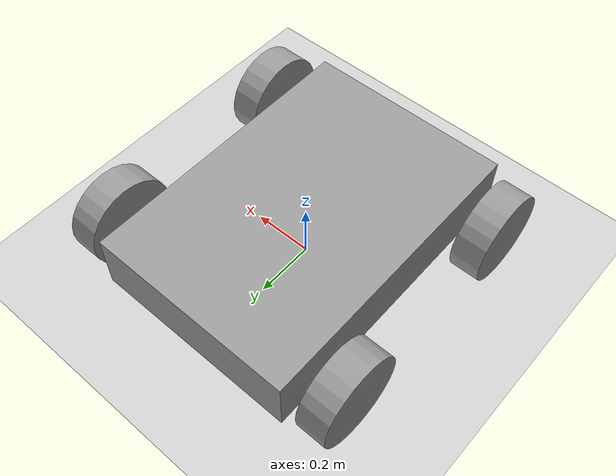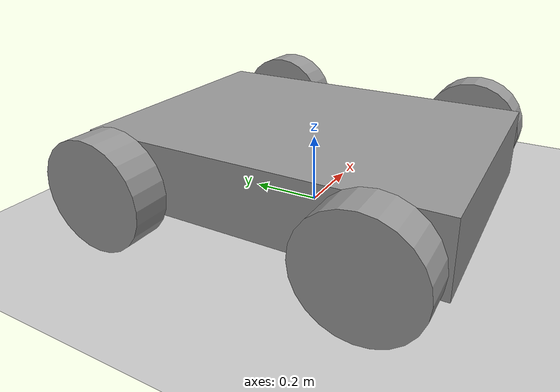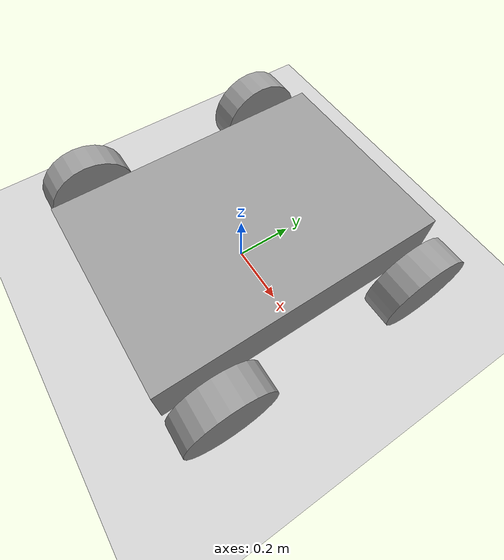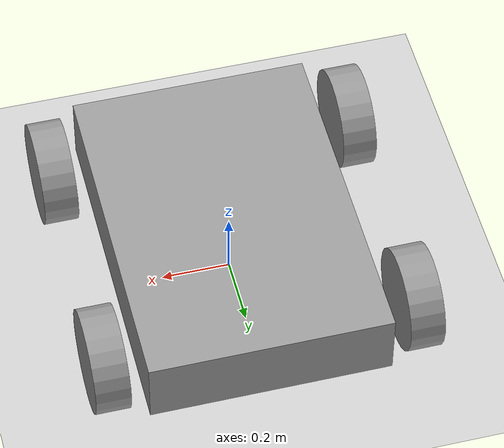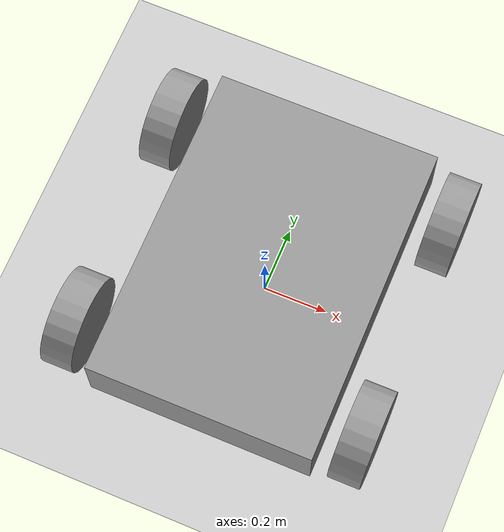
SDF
<sdf version='1.6'>
  <world name='default'>
    <physics type="ode">
      <ode>
        <solver>
          <type>quick</type>
          <iters>50</iters>
          <sor>1.0</sor>
        </solver>
      </ode>
    </physics>
    <light name='sun' type='directional'>
      <cast_shadows>1</cast_shadows>
      <pose frame=''>0 0 10 0 -0 0</pose>
      <diffuse>0.8 0.8 0.8 1</diffuse>
      <specular>0.1 0.1 0.1 1</specular>
      <attenuation>
        <range>1000</range>
        <constant>0.9</constant>
        <linear>0.01</linear>
        <quadratic>0.001</quadratic>
      </attenuation>
      <direction>-0.5 0.5 -1</direction>
    </light>
    <model name='ground_plane'>
      <static>1</static>
      <link name='link'>
        <collision name='collision'>
          <geometry>
            <plane>
              <normal>0 0 1</normal>
              <size>100 100</size>
            </plane>
          </geometry>
          <surface>
            <friction>
              <ode>
                <mu>inf</mu>
                <mu2>inf</mu2>
              </ode>
              <torsional>
                <ode/>
              </torsional>
            </friction>
            <contact>
              <ode/>
            </contact>
            <bounce/>
          </surface>
          <max_contacts>10</max_contacts>
        </collision>
        <visual name='visual'>
          <cast_shadows>0</cast_shadows>
          <geometry>
            <plane>
              <normal>0 0 1</normal>
              <size>100 100</size>
            </plane>
          </geometry>
          <material>
            <script>
              <uri>file://media/materials/scripts/gazebo.material</uri>
              <name>Gazebo/Grey</name>
            </script>
          </material>
        </visual>
        <self_collide>0</self_collide>
        <kinematic>0</kinematic>
        <gravity>1</gravity>
      </link>
    </model>
    <gravity>0 0 -9.8</gravity>
    <magnetic_field>6e-06 2.3e-05 -4.2e-05</magnetic_field>
    <atmosphere type='adiabatic'/>
    <physics name='default_physics' default='0' type='ode'>
      <max_step_size>0.001</max_step_size>
      <real_time_factor>1</real_time_factor>
      <real_time_update_rate>1000</real_time_update_rate>
    </physics>
    <scene>
      <ambient>0.4 0.4 0.4 1</ambient>
      <background>0.7 0.7 0.7 1</background>
      <shadows>1</shadows>
    </scene>
    <spherical_coordinates>
      <surface_model>EARTH_WGS84</surface_model>
      <latitude_deg>0</latitude_deg>
      <longitude_deg>0</longitude_deg>
      <elevation>0</elevation>
      <heading_deg>0</heading_deg>
    </spherical_coordinates>
    <model name='car3'>
      <link name='link_0'>
        <pose frame=''>0 0 0 0 -0 0</pose>
        <inertial>
          <mass>0.143038</mass>
          <inertia>
            <ixx>0.0124219</ixx>
            <ixy>0</ixy>
            <ixz>0</ixz>
            <iyy>0.00629195</iyy>
            <iyz>0</iyz>
            <izz>0.0177097</izz>
          </inertia>
          <pose frame=''>0 0 0 0 -0 0</pose>
        </inertial>
        <gravity>1</gravity>
        <self_collide>0</self_collide>
        <kinematic>0</kinematic>
        <visual name='visual'>
          <pose frame=''>0 0 0 0 -0 0</pose>
          <geometry>
            <box>
              <size>0.7 1 0.2</size>
            </box>
          </geometry>
          <material>
            <lighting>1</lighting>
            <script>
              <uri>file://media/materials/scripts/gazebo.material</uri>
              <name>Gazebo/Grey</name>
            </script>
            <ambient>0.3 0.3 0.3 1</ambient>
            <diffuse>0.7 0.7 0.7 1</diffuse>
            <specular>0.01 0.01 0.01 1</specular>
            <emissive>0 0 0 1</emissive>
            <shader type='vertex'>
              <normal_map>__default__</normal_map>
            </shader>
          </material>
          <cast_shadows>1</cast_shadows>
          <transparency>0</transparency>
        </visual>
        <collision name='collision'>
          <laser_retro>0</laser_retro>
          <max_contacts>10</max_contacts>
          <pose frame=''>0 0 0 0 -0 0</pose>
          <geometry>
            <box>
              <size>0.7 1 0.2</size>
            </box>
          </geometry>
          <surface>
            <friction>
              <ode>
                <mu>inf</mu>
                <mu2>inf</mu2>
                <fdir1>0 0 0</fdir1>
                <slip1>0</slip1>
                <slip2>0</slip2>
              </ode>
              <torsional>
                <coefficient>1</coefficient>
                <patch_radius>0</patch_radius>
                <surface_radius>0</surface_radius>
                <use_patch_radius>1</use_patch_radius>
                <ode>
                  <slip>0</slip>
                </ode>
              </torsional>
            </friction>
            <bounce>
              <restitution_coefficient>0</restitution_coefficient>
              <threshold>1e+06</threshold>
            </bounce>
            <contact>
              <collide_without_contact>0</collide_without_contact>
              <collide_without_contact_bitmask>1</collide_without_contact_bitmask>
              <collide_bitmask>1</collide_bitmask>
              <ode>
                <soft_cfm>0</soft_cfm>
                <soft_erp>0.2</soft_erp>
                <kp>1e+13</kp>
                <kd>1</kd>
                <max_vel>0.01</max_vel>
                <min_depth>0</min_depth>
              </ode>
              <bullet>
                <split_impulse>1</split_impulse>
                <split_impulse_penetration_threshold>-0.01</split_impulse_penetration_threshold>
                <soft_cfm>0</soft_cfm>
                <soft_erp>0.2</soft_erp>
                <kp>1e+13</kp>
                <kd>1</kd>
              </bullet>
            </contact>
          </surface>
        </collision>
      </link>
      <link name='link_1'>
        <pose frame=''>0.45 0.35 0 3.14159 1.57079 3.14159</pose>
        <inertial>
          <mass>1</mass>
          <inertia>
            <ixx>0.145833</ixx>
            <ixy>0</ixy>
            <ixz>0</ixz>
            <iyy>0.145833</iyy>
            <iyz>0</iyz>
            <izz>0.125</izz>
          </inertia>
          <pose frame=''>0 0 0 0 -0 0</pose>
        </inertial>
        <gravity>1</gravity>
        <self_collide>0</self_collide>
        <kinematic>0</kinematic>
        <visual name='visual'>
          <pose frame=''>0 0 0 0 -0 0</pose>
          <geometry>
            <cylinder>
              <radius>0.15</radius>
              <length>0.1</length>
            </cylinder>
          </geometry>
          <material>
            <lighting>1</lighting>
            <script>
              <uri>file://media/materials/scripts/gazebo.material</uri>
              <name>Gazebo/Grey</name>
            </script>
            <ambient>0.3 0.3 0.3 1</ambient>
            <diffuse>0.7 0.7 0.7 1</diffuse>
            <specular>0.01 0.01 0.01 1</specular>
            <emissive>0 0 0 1</emissive>
            <shader type='vertex'>
              <normal_map>__default__</normal_map>
            </shader>
          </material>
          <cast_shadows>1</cast_shadows>
          <transparency>0</transparency>
        </visual>
        <collision name='collision'>
          <laser_retro>0</laser_retro>
          <max_contacts>10</max_contacts>
          <pose frame=''>0 0 0 0 -0 0</pose>
          <geometry>
            <cylinder>
              <radius>0.15</radius>
              <length>0.1</length>
            </cylinder>
          </geometry>
          <surface>
            <friction>
              <ode>
                <mu>inf</mu>
                <mu2>inf</mu2>
                <fdir1>0 0 0</fdir1>
                <slip1>0</slip1>
                <slip2>0</slip2>
              </ode>
              <torsional>
                <coefficient>1</coefficient>
                <patch_radius>0</patch_radius>
                <surface_radius>0</surface_radius>
                <use_patch_radius>1</use_patch_radius>
                <ode>
                  <slip>0</slip>
                </ode>
              </torsional>
            </friction>
            <bounce>
              <restitution_coefficient>0</restitution_coefficient>
              <threshold>1e+06</threshold>
            </bounce>
            <contact>
              <collide_without_contact>0</collide_without_contact>
              <collide_without_contact_bitmask>1</collide_without_contact_bitmask>
              <collide_bitmask>1</collide_bitmask>
              <ode>
                <soft_cfm>0</soft_cfm>
                <soft_erp>0.2</soft_erp>
                <kp>1e+13</kp>
                <kd>1</kd>
                <max_vel>0.01</max_vel>
                <min_depth>0</min_depth>
              </ode>
              <bullet>
                <split_impulse>1</split_impulse>
                <split_impulse_penetration_threshold>-0.01</split_impulse_penetration_threshold>
                <soft_cfm>0</soft_cfm>
                <soft_erp>0.2</soft_erp>
                <kp>1e+13</kp>
                <kd>1</kd>
              </bullet>
            </contact>
          </surface>
        </collision>
      </link>
      <link name='link_1_clone'>
        <pose frame=''>-0.45 0.35 0 3.14159 1.57079 3.14159</pose>
        <inertial>
          <mass>1</mass>
          <inertia>
            <ixx>0.145833</ixx>
            <ixy>0</ixy>
            <ixz>0</ixz>
            <iyy>0.145833</iyy>
            <iyz>0</iyz>
            <izz>0.125</izz>
          </inertia>
          <pose frame=''>0 0 0 0 -0 0</pose>
        </inertial>
        <self_collide>0</self_collide>
        <kinematic>0</kinematic>
        <gravity>1</gravity>
        <visual name='visual'>
          <pose frame=''>0 0 0 0 -0 0</pose>
          <geometry>
            <cylinder>
              <radius>0.15</radius>
              <length>0.1</length>
            </cylinder>
          </geometry>
          <material>
            <lighting>1</lighting>
            <script>
              <uri>file://media/materials/scripts/gazebo.material</uri>
              <name>Gazebo/Grey</name>
            </script>
            <ambient>0.3 0.3 0.3 1</ambient>
            <diffuse>0.7 0.7 0.7 1</diffuse>
            <specular>0.01 0.01 0.01 1</specular>
            <emissive>0 0 0 1</emissive>
            <shader type='vertex'>
              <normal_map>__default__</normal_map>
            </shader>
          </material>
          <cast_shadows>1</cast_shadows>
          <transparency>0</transparency>
        </visual>
        <collision name='collision'>
          <laser_retro>0</laser_retro>
          <max_contacts>10</max_contacts>
          <pose frame=''>0 0 0 0 -0 0</pose>
          <geometry>
            <cylinder>
              <radius>0.15</radius>
              <length>0.1</length>
            </cylinder>
          </geometry>
          <surface>
            <friction>
              <ode>
                <mu>inf</mu>
                <mu2>inf</mu2>
                <fdir1>0 0 0</fdir1>
                <slip1>0</slip1>
                <slip2>0</slip2>
              </ode>
              <torsional>
                <coefficient>1</coefficient>
                <patch_radius>0</patch_radius>
                <surface_radius>0</surface_radius>
                <use_patch_radius>1</use_patch_radius>
                <ode>
                  <slip>0</slip>
                </ode>
              </torsional>
            </friction>
            <bounce>
              <restitution_coefficient>0</restitution_coefficient>
              <threshold>1e+06</threshold>
            </bounce>
            <contact>
              <collide_without_contact>0</collide_without_contact>
              <collide_without_contact_bitmask>1</collide_without_contact_bitmask>
              <collide_bitmask>1</collide_bitmask>
              <ode>
                <soft_cfm>0</soft_cfm>
                <soft_erp>0.2</soft_erp>
                <kp>1e+13</kp>
                <kd>1</kd>
                <max_vel>0.01</max_vel>
                <min_depth>0</min_depth>
              </ode>
              <bullet>
                <split_impulse>1</split_impulse>
                <split_impulse_penetration_threshold>-0.01</split_impulse_penetration_threshold>
                <soft_cfm>0</soft_cfm>
                <soft_erp>0.2</soft_erp>
                <kp>1e+13</kp>
                <kd>1</kd>
              </bullet>
            </contact>
          </surface>
        </collision>
      </link>
      <link name='link_1_clone_clone'>
        <pose frame=''>-0.45 -0.35 0 3.14159 1.57079 3.14159</pose>
        <inertial>
          <mass>1</mass>
          <inertia>
            <ixx>0.145833</ixx>
            <ixy>0</ixy>
            <ixz>0</ixz>
            <iyy>0.145833</iyy>
            <iyz>0</iyz>
            <izz>0.125</izz>
          </inertia>
          <pose frame=''>0 0 0 0 -0 0</pose>
        </inertial>
        <self_collide>0</self_collide>
        <kinematic>0</kinematic>
        <gravity>1</gravity>
        <visual name='visual'>
          <pose frame=''>0 0 0 0 -0 0</pose>
          <geometry>
            <cylinder>
              <radius>0.15</radius>
              <length>0.1</length>
            </cylinder>
          </geometry>
          <material>
            <lighting>1</lighting>
            <script>
              <uri>file://media/materials/scripts/gazebo.material</uri>
              <name>Gazebo/Grey</name>
            </script>
            <ambient>0.3 0.3 0.3 1</ambient>
            <diffuse>0.7 0.7 0.7 1</diffuse>
            <specular>0.01 0.01 0.01 1</specular>
            <emissive>0 0 0 1</emissive>
            <shader type='vertex'>
              <normal_map>__default__</normal_map>
            </shader>
          </material>
          <cast_shadows>1</cast_shadows>
          <transparency>0</transparency>
        </visual>
        <collision name='collision'>
          <laser_retro>0</laser_retro>
          <max_contacts>10</max_contacts>
          <pose frame=''>0 0 0 0 -0 0</pose>
          <geometry>
            <cylinder>
              <radius>0.15</radius>
              <length>0.1</length>
            </cylinder>
          </geometry>
          <surface>
            <friction>
              <ode>
                <mu>inf</mu>
                <mu2>inf</mu2>
                <fdir1>0 0 0</fdir1>
                <slip1>0</slip1>
                <slip2>0</slip2>
              </ode>
              <torsional>
                <coefficient>1</coefficient>
                <patch_radius>0</patch_radius>
                <surface_radius>0</surface_radius>
                <use_patch_radius>1</use_patch_radius>
                <ode>
                  <slip>0</slip>
                </ode>
              </torsional>
            </friction>
            <bounce>
              <restitution_coefficient>0</restitution_coefficient>
              <threshold>1e+06</threshold>
            </bounce>
            <contact>
              <collide_without_contact>0</collide_without_contact>
              <collide_without_contact_bitmask>1</collide_without_contact_bitmask>
              <collide_bitmask>1</collide_bitmask>
              <ode>
                <soft_cfm>0</soft_cfm>
                <soft_erp>0.2</soft_erp>
                <kp>1e+13</kp>
                <kd>1</kd>
                <max_vel>0.01</max_vel>
                <min_depth>0</min_depth>
              </ode>
              <bullet>
                <split_impulse>1</split_impulse>
                <split_impulse_penetration_threshold>-0.01</split_impulse_penetration_threshold>
                <soft_cfm>0</soft_cfm>
                <soft_erp>0.2</soft_erp>
                <kp>1e+13</kp>
                <kd>1</kd>
              </bullet>
            </contact>
          </surface>
        </collision>
      </link>
      <link name='link_1_clone_clone_0'>
        <pose frame=''>0.45 -0.35 0 3.14159 1.57079 3.14159</pose>
        <inertial>
          <mass>1</mass>
          <inertia>
            <ixx>0.145833</ixx>
            <ixy>0</ixy>
            <ixz>0</ixz>
            <iyy>0.145833</iyy>
            <iyz>0</iyz>
            <izz>0.125</izz>
          </inertia>
          <pose frame=''>0 0 0 0 -0 0</pose>
        </inertial>
        <self_collide>0</self_collide>
        <kinematic>0</kinematic>
        <gravity>1</gravity>
        <visual name='visual'>
          <pose frame=''>0 0 0 0 -0 0</pose>
          <geometry>
            <cylinder>
              <radius>0.15</radius>
              <length>0.1</length>
            </cylinder>
          </geometry>
          <material>
            <lighting>1</lighting>
            <script>
              <uri>file://media/materials/scripts/gazebo.material</uri>
              <name>Gazebo/Grey</name>
            </script>
            <ambient>0.3 0.3 0.3 1</ambient>
            <diffuse>0.7 0.7 0.7 1</diffuse>
            <specular>0.01 0.01 0.01 1</specular>
            <emissive>0 0 0 1</emissive>
            <shader type='vertex'>
              <normal_map>__default__</normal_map>
            </shader>
          </material>
          <cast_shadows>1</cast_shadows>
          <transparency>0</transparency>
        </visual>
        <collision name='collision'>
          <laser_retro>0</laser_retro>
          <max_contacts>10</max_contacts>
          <pose frame=''>0 0 0 0 -0 0</pose>
          <geometry>
            <cylinder>
              <radius>0.15</radius>
              <length>0.1</length>
            </cylinder>
          </geometry>
          <surface>
            <friction>
              <ode>
                <mu>inf</mu>
                <mu2>inf</mu2>
                <fdir1>0 0 0</fdir1>
                <slip1>0</slip1>
                <slip2>0</slip2>
              </ode>
              <torsional>
                <coefficient>1</coefficient>
                <patch_radius>0</patch_radius>
                <surface_radius>0</surface_radius>
                <use_patch_radius>1</use_patch_radius>
                <ode>
                  <slip>0</slip>
                </ode>
              </torsional>
            </friction>
            <bounce>
              <restitution_coefficient>0</restitution_coefficient>
              <threshold>1e+06</threshold>
            </bounce>
            <contact>
              <collide_without_contact>0</collide_without_contact>
              <collide_without_contact_bitmask>1</collide_without_contact_bitmask>
              <collide_bitmask>1</collide_bitmask>
              <ode>
                <soft_cfm>0</soft_cfm>
                <soft_erp>0.2</soft_erp>
                <kp>1e+13</kp>
                <kd>1</kd>
                <max_vel>0.01</max_vel>
                <min_depth>0</min_depth>
              </ode>
              <bullet>
                <split_impulse>1</split_impulse>
                <split_impulse_penetration_threshold>-0.01</split_impulse_penetration_threshold>
                <soft_cfm>0</soft_cfm>
                <soft_erp>0.2</soft_erp>
                <kp>1e+13</kp>
                <kd>1</kd>
              </bullet>
            </contact>
          </surface>
        </collision>
      </link>
      <link name='link_2'>
        <pose frame=''>-0.45 0.35 0 0 -0 0</pose>
        <inertial>
          <mass>0.0001</mass>
          <inertia>
            <ixx>0.1</ixx>
            <ixy>0</ixy>
            <ixz>0</ixz>
            <iyy>0.1</iyy>
            <iyz>0</iyz>
            <izz>0.1</izz>
          </inertia>
          <pose frame=''>0 0 0 0 -0 0</pose>
        </inertial>
        <gravity>1</gravity>
        <self_collide>0</self_collide>
        <kinematic>0</kinematic>
        <visual name='visual'>
          <pose frame=''>0 0 0 0 -0 0</pose>
          <geometry>
            <sphere>
              <radius>0.01</radius>
            </sphere>
          </geometry>
          <material>
            <lighting>1</lighting>
            <script>
              <uri>file://media/materials/scripts/gazebo.material</uri>
              <name>Gazebo/Grey</name>
            </script>
            <ambient>0.3 0.3 0.3 1</ambient>
            <diffuse>0.7 0.7 0.7 1</diffuse>
            <specular>0.01 0.01 0.01 1</specular>
            <emissive>0 0 0 1</emissive>
            <shader type='vertex'>
              <normal_map>__default__</normal_map>
            </shader>
          </material>
          <cast_shadows>1</cast_shadows>
          <transparency>0</transparency>
        </visual>
        <collision name='collision'>
          <laser_retro>0</laser_retro>
          <max_contacts>10</max_contacts>
          <pose frame=''>0 0 0 0 -0 0</pose>
          <geometry>
            <sphere>
              <radius>0.01</radius>
            </sphere>
          </geometry>
          <surface>
            <friction>
              <ode>
                <mu>inf</mu>
                <mu2>inf</mu2>
                <fdir1>0 0 0</fdir1>
                <slip1>0</slip1>
                <slip2>0</slip2>
              </ode>
              <torsional>
                <coefficient>1</coefficient>
                <patch_radius>0</patch_radius>
                <surface_radius>0</surface_radius>
                <use_patch_radius>1</use_patch_radius>
                <ode>
                  <slip>0</slip>
                </ode>
              </torsional>
            </friction>
            <bounce>
              <restitution_coefficient>0</restitution_coefficient>
              <threshold>1e+06</threshold>
            </bounce>
            <contact>
              <collide_without_contact>0</collide_without_contact>
              <collide_without_contact_bitmask>1</collide_without_contact_bitmask>
              <collide_bitmask>1</collide_bitmask>
              <ode>
                <soft_cfm>0</soft_cfm>
                <soft_erp>0.2</soft_erp>
                <kp>1e+13</kp>
                <kd>1</kd>
                <max_vel>0.01</max_vel>
                <min_depth>0</min_depth>
              </ode>
              <bullet>
                <split_impulse>1</split_impulse>
                <split_impulse_penetration_threshold>-0.01</split_impulse_penetration_threshold>
                <soft_cfm>0</soft_cfm>
                <soft_erp>0.2</soft_erp>
                <kp>1e+13</kp>
                <kd>1</kd>
              </bullet>
            </contact>
          </surface>
        </collision>
      </link>
      <link name='link_2_clone'>
        <pose frame=''>0.45 0.35 0 0 -0 0</pose>
        <inertial>
          <mass>0.0001</mass>
          <inertia>
            <ixx>0.1</ixx>
            <ixy>0</ixy>
            <ixz>0</ixz>
            <iyy>0.1</iyy>
            <iyz>0</iyz>
            <izz>0.1</izz>
          </inertia>
          <pose frame=''>0 0 0 0 -0 0</pose>
        </inertial>
        <self_collide>0</self_collide>
        <kinematic>0</kinematic>
        <gravity>1</gravity>
        <visual name='visual'>
          <pose frame=''>0 0 0 0 -0 0</pose>
          <geometry>
            <sphere>
              <radius>0.01</radius>
            </sphere>
          </geometry>
          <material>
            <lighting>1</lighting>
            <script>
              <uri>file://media/materials/scripts/gazebo.material</uri>
              <name>Gazebo/Grey</name>
            </script>
            <ambient>0.3 0.3 0.3 1</ambient>
            <diffuse>0.7 0.7 0.7 1</diffuse>
            <specular>0.01 0.01 0.01 1</specular>
            <emissive>0 0 0 1</emissive>
            <shader type='vertex'>
              <normal_map>__default__</normal_map>
            </shader>
          </material>
          <cast_shadows>1</cast_shadows>
          <transparency>0</transparency>
        </visual>
        <collision name='collision'>
          <laser_retro>0</laser_retro>
          <max_contacts>10</max_contacts>
          <pose frame=''>0 0 0 0 -0 0</pose>
          <geometry>
            <sphere>
              <radius>0.01</radius>
            </sphere>
          </geometry>
          <surface>
            <friction>
              <ode>
                <mu>inf</mu>
                <mu2>inf</mu2>
                <fdir1>0 0 0</fdir1>
                <slip1>0</slip1>
                <slip2>0</slip2>
              </ode>
              <torsional>
                <coefficient>1</coefficient>
                <patch_radius>0</patch_radius>
                <surface_radius>0</surface_radius>
                <use_patch_radius>1</use_patch_radius>
                <ode>
                  <slip>0</slip>
                </ode>
              </torsional>
            </friction>
            <bounce>
              <restitution_coefficient>0</restitution_coefficient>
              <threshold>1e+06</threshold>
            </bounce>
            <contact>
              <collide_without_contact>0</collide_without_contact>
              <collide_without_contact_bitmask>1</collide_without_contact_bitmask>
              <collide_bitmask>1</collide_bitmask>
              <ode>
                <soft_cfm>0</soft_cfm>
                <soft_erp>0.2</soft_erp>
                <kp>1e+13</kp>
                <kd>1</kd>
                <max_vel>0.01</max_vel>
                <min_depth>0</min_depth>
              </ode>
              <bullet>
                <split_impulse>1</split_impulse>
                <split_impulse_penetration_threshold>-0.01</split_impulse_penetration_threshold>
                <soft_cfm>0</soft_cfm>
                <soft_erp>0.2</soft_erp>
                <kp>1e+13</kp>
                <kd>1</kd>
              </bullet>
            </contact>
          </surface>
        </collision>
      </link>
      <joint name='lf_steer' type='revolute'>
        <parent>link_0</parent>
        <child>link_2</child>
        <pose frame=''>0 0 0 0 -0 0</pose>
        <axis>
          <xyz>0 0 1</xyz>
          <use_parent_model_frame>0</use_parent_model_frame>
          <limit>
            <lower>-1.79769e+308</lower>
            <upper>1.79769e+308</upper>
            <effort>-1</effort>
            <velocity>-1</velocity>
          </limit>
          <dynamics>
            <spring_reference>0</spring_reference>
            <spring_stiffness>0</spring_stiffness>
            <damping>100</damping>
            <friction>0</friction>
          </dynamics>
        </axis>
        <physics>
          <ode>
            <implicit_spring_damper>1</implicit_spring_damper>
            <limit>
              <cfm>0</cfm>
              <erp>0.2</erp>
            </limit>
            <suspension>
              <cfm>0</cfm>
              <erp>0.2</erp>
            </suspension>
          </ode>
        </physics>
      </joint>
      <joint name='rf_steer' type='revolute'>
        <parent>link_0</parent>
        <child>link_2_clone</child>
        <pose frame=''>0 0 0 0 -0 0</pose>
        <axis>
          <xyz>0 0 1</xyz>
          <use_parent_model_frame>0</use_parent_model_frame>
          <limit>
            <lower>-1.79769e+308</lower>
            <upper>1.79769e+308</upper>
            <effort>-1</effort>
            <velocity>-1</velocity>
          </limit>
          <dynamics>
            <spring_reference>0</spring_reference>
            <spring_stiffness>0</spring_stiffness>
            <damping>100</damping>
            <friction>0</friction>
          </dynamics>
        </axis>
        <physics>
          <ode>
            <implicit_spring_damper>1</implicit_spring_damper>
            <limit>
              <cfm>0</cfm>
              <erp>0.2</erp>
            </limit>
            <suspension>
              <cfm>0</cfm>
              <erp>0.2</erp>
            </suspension>
          </ode>
        </physics>
      </joint>
      <joint name='lb_drive' type='revolute'>
        <parent>link_0</parent>
        <child>link_1_clone_clone</child>
        <pose frame=''>0 0 0 0 -0 0</pose>
        <axis>
          <xyz>0 0 -1</xyz>
          <use_parent_model_frame>0</use_parent_model_frame>
          <limit>
            <lower>-1.79769e+308</lower>
            <upper>1.79769e+308</upper>
            <effort>-1</effort>
            <velocity>-1</velocity>
          </limit>
          <dynamics>
            <spring_reference>0</spring_reference>
            <spring_stiffness>0</spring_stiffness>
            <damping>100</damping>
            <friction>0</friction>
          </dynamics>
        </axis>
        <physics>
          <ode>
            <implicit_spring_damper>1</implicit_spring_damper>
            <limit>
              <cfm>0</cfm>
              <erp>0.2</erp>
            </limit>
            <suspension>
              <cfm>0</cfm>
              <erp>0.2</erp>
            </suspension>
          </ode>
        </physics>
      </joint>
      <joint name='rb_drive' type='revolute'>
        <parent>link_0</parent>
        <child>link_1_clone_clone_0</child>
        <pose frame=''>0 0 0 0 -0 0</pose>
        <axis>
          <xyz>0 0 -1</xyz>
          <use_parent_model_frame>0</use_parent_model_frame>
          <limit>
            <lower>-1.79769e+308</lower>
            <upper>1.79769e+308</upper>
            <effort>-1</effort>
            <velocity>-1</velocity>
          </limit>
          <dynamics>
            <spring_reference>0</spring_reference>
            <spring_stiffness>0</spring_stiffness>
            <damping>100</damping>
            <friction>0</friction>
          </dynamics>
        </axis>
        <physics>
          <ode>
            <implicit_spring_damper>1</implicit_spring_damper>
            <limit>
              <cfm>0</cfm>
              <erp>0.2</erp>
            </limit>
            <suspension>
              <cfm>0</cfm>
              <erp>0.2</erp>
            </suspension>
          </ode>
        </physics>
      </joint>
      <joint name='lf_drive' type='revolute'>
        <parent>link_2</parent>
        <child>link_1_clone</child>
        <pose frame=''>0 0 0 0 -0 0</pose>
        <axis>
          <xyz>0 0 -1</xyz>
          <use_parent_model_frame>0</use_parent_model_frame>
          <limit>
            <lower>-1.79769e+308</lower>
            <upper>1.79769e+308</upper>
            <effort>-1</effort>
            <velocity>-1</velocity>
          </limit>
          <dynamics>
            <spring_reference>0</spring_reference>
            <spring_stiffness>0</spring_stiffness>
            <damping>100</damping>
            <friction>0</friction>
          </dynamics>
        </axis>
        <physics>
          <ode>
            <implicit_spring_damper>1</implicit_spring_damper>
            <limit>
              <cfm>0</cfm>
              <erp>0.2</erp>
            </limit>
            <suspension>
              <cfm>0</cfm>
              <erp>0.2</erp>
            </suspension>
          </ode>
        </physics>
      </joint>
      <joint name='rf_drive' type='revolute'>
        <parent>link_2_clone</parent>
        <child>link_1</child>
        <pose frame=''>0 0 0 0 -0 0</pose>
        <axis>
          <xyz>0 0 -1</xyz>
          <use_parent_model_frame>0</use_parent_model_frame>
          <limit>
            <lower>-1.79769e+308</lower>
            <upper>1.79769e+308</upper>
            <effort>-1</effort>
            <velocity>-1</velocity>
          </limit>
          <dynamics>
            <spring_reference>0</spring_reference>
            <spring_stiffness>0</spring_stiffness>
            <damping>100</damping>
            <friction>0</friction>
          </dynamics>
        </axis>
        <physics>
          <ode>
            <implicit_spring_damper>1</implicit_spring_damper>
            <limit>
              <cfm>0</cfm>
              <erp>0.2</erp>
            </limit>
            <suspension>
              <cfm>0</cfm>
              <erp>0.2</erp>
            </suspension>
          </ode>
        </physics>
      </joint>
      <static>0</static>
      <allow_auto_disable>1</allow_auto_disable>
      <self_collide>1</self_collide>
      <plugin name='push' filename='libpush.so' />
      <pose frame=''>0 0 0.15 0 -0 0</pose>
    </model>
      <plugin name='lit' filename='liblit.so' />
    </world>
</sdf>
